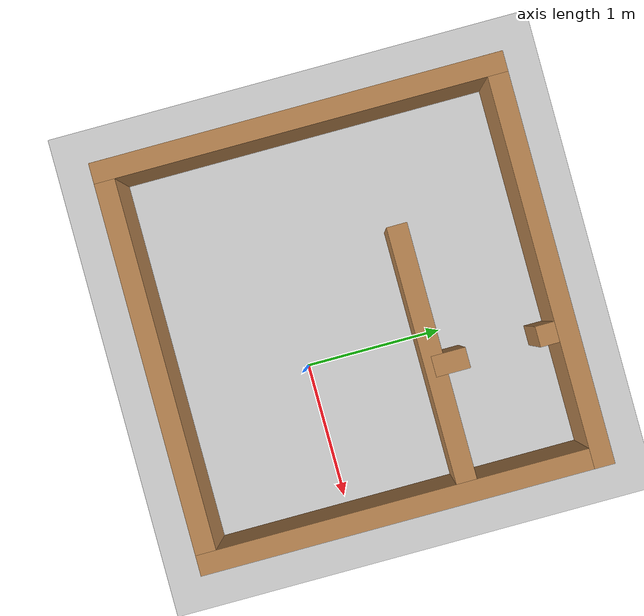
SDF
<sdf version="1.7">
 <world name="default">
  <light name="sun" type="directional">
   <pose>0 0 10 0 -0 0</pose>
   <diffuse>0.8 0.8 0.8 1</diffuse>
   <specular>0.2 0.2 0.2 1</specular>
   <attenuation>
    <range>1000</range>
    <constant>0.9</constant>
    <linear>0.01</linear>
    <quadratic>0.001</quadratic>
   </attenuation>
   <direction>-0.5 0.1 -0.9</direction>
   <spot><inner_angle>0</inner_angle><outer_angle>0</outer_angle><falloff>0</falloff></spot>
  </light>
  <model name="ground_plane">
   <static>1</static>
   <link name="link">
    <collision name="collision">
     <geometry><plane><normal>0 0 1</normal><size>100 100</size></plane></geometry>
     <surface><friction><ode><mu>100</mu><mu2>50</mu2></ode></friction></surface>
    </collision>
    <visual name="visual">
     <cast_shadows>0</cast_shadows>
     <geometry><plane><normal>0 0 1</normal><size>100 100</size></plane></geometry>
     <material>
      <script><uri>file://media/materials/scripts/gazebo.material</uri><name>Gazebo/Grey</name></script>
     </material>
    </visual>
   </link>
  </model>
  <gravity>0 0 -9.8</gravity>
  <magnetic_field>6e-06 2.3e-05 -4.2e-05</magnetic_field>
  <atmosphere type="adiabatic"/>
  <physics type="ode">
   <max_step_size>0.001</max_step_size>
   <real_time_factor>1</real_time_factor>
   <real_time_update_rate>1000</real_time_update_rate>
  </physics>
  <scene><ambient>0.4 0.4 0.4 1</ambient><background>0.7 0.7 0.7 1</background><shadows>1</shadows></scene>
  <spherical_coordinates>
   <surface_model>EARTH_WGS84</surface_model>
   <latitude_deg>0</latitude_deg>
   <longitude_deg>0</longitude_deg>
   <elevation>0</elevation>
   <heading_deg>0</heading_deg>
  </spherical_coordinates>
  <model name="SimWorld3">
   <pose>-0.290008 1.05317 0 0 -0 0</pose>
   <link name="Wall_0">
    <collision name="Wall_0_Collision">
     <geometry><box><size>3 0.15 0.5</size></box></geometry>
     <pose>0 0 0.25 0 -0 0</pose>
    </collision>
    <visual name="Wall_0_Visual">
     <pose>0 0 0.25 0 -0 0</pose>
     <geometry><box><size>3 0.15 0.5</size></box></geometry>
     <material>
      <script><uri>file://media/materials/scripts/gazebo.material</uri><name>Gazebo/Wood</name></script>
      <ambient>1 1 1 1</ambient>
     </material>
     <meta><layer>0</layer></meta>
    </visual>
    <pose>-1.4205 -0.6425 0 0 -0 1.5708</pose>
   </link>
   <link name="Wall_1">
    <collision name="Wall_1_Collision">
     <geometry><box><size>2.9913 0.15 0.5</size></box></geometry>
     <pose>0 0 0.25 0 -0 0</pose>
    </collision>
    <visual name="Wall_1_Visual">
     <pose>0 0 0.25 0 -0 0</pose>
     <geometry><box><size>2.9913 0.15 0.5</size></box></geometry>
     <material>
      <script><uri>file://media/materials/scripts/gazebo.material</uri><name>Gazebo/Wood</name></script>
      <ambient>1 1 1 1</ambient>
     </material>
     <meta><layer>0</layer></meta>
    </visual>
    <pose>0 0.7825 0 0 -0 0</pose>
   </link>
   <link name="Wall_11">
    <collision name="Wall_11_Collision">
     <geometry><box><size>0.25 0.15 0.5</size></box></geometry>
     <pose>0 0 0.25 0 -0 0</pose>
    </collision>
    <visual name="Wall_11_Visual">
     <pose>0 0 0.25 0 -0 0</pose>
     <geometry><box><size>0.25 0.15 0.5</size></box></geometry>
     <material>
      <script><uri>file://media/materials/scripts/gazebo.material</uri><name>Gazebo/Wood</name></script>
      <ambient>1 1 1 1</ambient>
     </material>
     <meta><layer>0</layer></meta>
    </visual>
    <pose>0.5005 0.6925 0 0 -0 -1.5708</pose>
   </link>
   <link name="Wall_13">
    <collision name="Wall_13_Collision">
     <geometry><box><size>0.25 0.15 0.5</size></box></geometry>
     <pose>0 0 0.25 0 -0 0</pose>
    </collision>
    <visual name="Wall_13_Visual">
     <pose>0 0 0.25 0 -0 0</pose>
     <geometry><box><size>0.25 0.15 0.5</size></box></geometry>
     <material>
      <script><uri>file://media/materials/scripts/gazebo.material</uri><name>Gazebo/Wood</name></script>
      <ambient>1 1 1 1</ambient>
     </material>
     <meta><layer>0</layer></meta>
    </visual>
    <pose>0.5105 -0.0645 0 0 -0 1.5708</pose>
   </link>
   <link name="Wall_2">
    <collision name="Wall_2_Collision">
     <geometry><box><size>3 0.15 0.5</size></box></geometry>
     <pose>0 0 0.25 0 -0 0</pose>
    </collision>
    <visual name="Wall_2_Visual">
     <pose>0 0 0.25 0 -0 0</pose>
     <geometry><box><size>3 0.15 0.5</size></box></geometry>
     <material>
      <script><uri>file://media/materials/scripts/gazebo.material</uri><name>Gazebo/Wood</name></script>
      <ambient>1 1 1 1</ambient>
     </material>
     <meta><layer>0</layer></meta>
    </visual>
    <pose>1.4205 -0.6425 0 0 -0 -1.5708</pose>
   </link>
   <link name="Wall_3">
    <collision name="Wall_3_Collision">
     <geometry><box><size>2.9913 0.15 0.5</size></box></geometry>
     <pose>0 0 0.25 0 -0 0</pose>
    </collision>
    <visual name="Wall_3_Visual">
     <pose>0 0 0.25 0 -0 0</pose>
     <geometry><box><size>2.9913 0.15 0.5</size></box></geometry>
     <material>
      <script><uri>file://media/materials/scripts/gazebo.material</uri><name>Gazebo/Wood</name></script>
      <ambient>1 1 1 1</ambient>
     </material>
     <meta><layer>0</layer></meta>
    </visual>
    <pose>0 -2.0675 0 0 -0 3.14159</pose>
   </link>
   <link name="Wall_7">
    <collision name="Wall_7_Collision">
     <geometry><box><size>2 0.15 0.5</size></box></geometry>
     <pose>0 0 0.25 0 -0 0</pose>
    </collision>
    <visual name="Wall_7_Visual">
     <pose>0 0 0.25 0 -0 0</pose>
     <geometry><box><size>2 0.15 0.5</size></box></geometry>
     <material>
      <script><uri>file://media/materials/scripts/gazebo.material</uri><name>Gazebo/Wood</name></script>
      <ambient>1 1 1 1</ambient>
     </material>
     <meta><layer>0</layer></meta>
    </visual>
    <pose>0.4855 -0.1775 0 0 -0 3.14159</pose>
   </link>
   <static>1</static>
  </model>
 </world>
</sdf>
